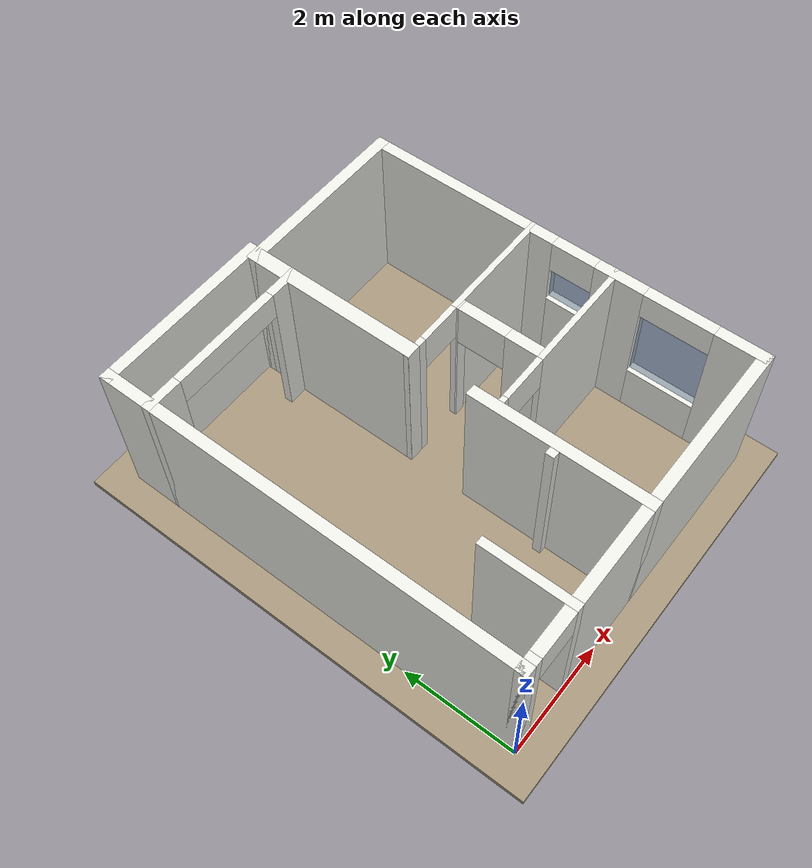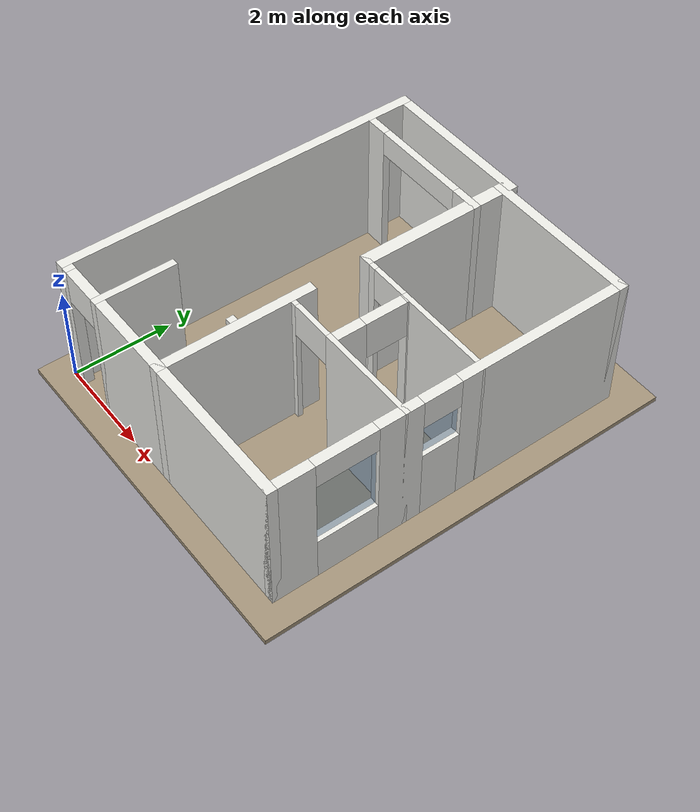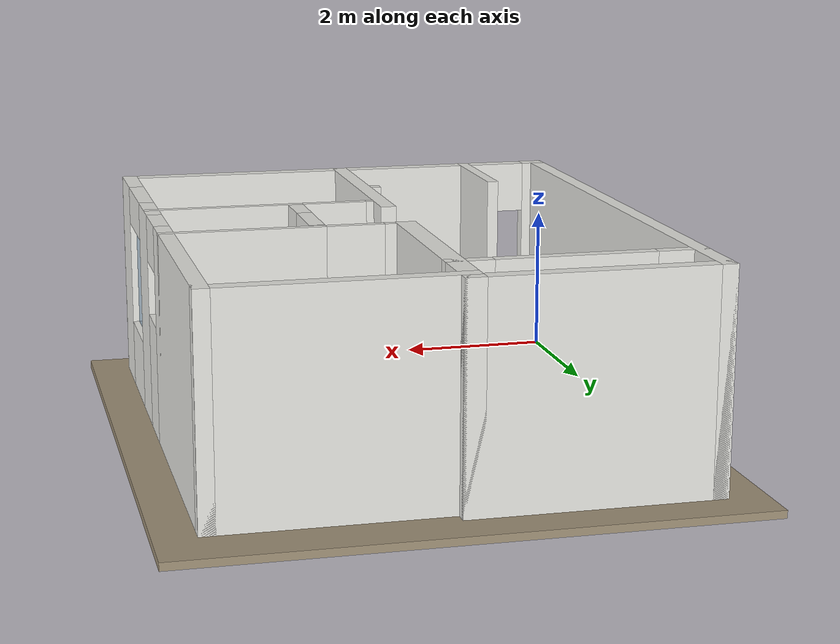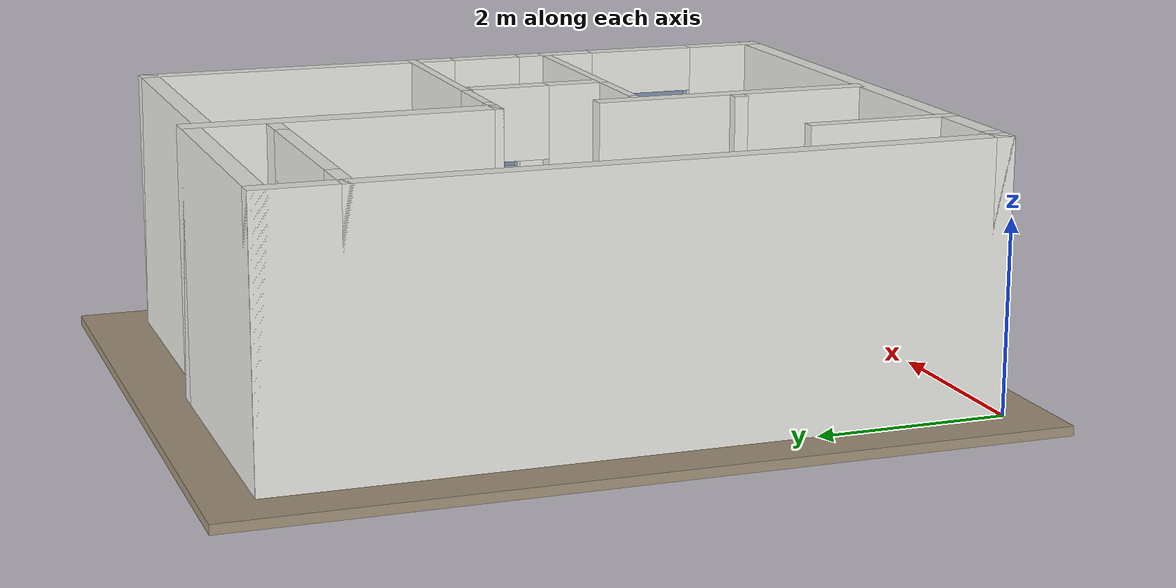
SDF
<?xml version="1.0" encoding="UTF-8"?>
<sdf version="1.6">
  <world name="apartment_house_merged_v1_3">
    <gravity>0 0 -9.81</gravity>
    <physics name="default_physics" type="ode">
      <!-- Accurate iterative solve for the four simultaneous wheel contacts. -->
      <ode>
        <solver>
          <type>quick</type>
          <iters>200</iters>
        </solver>
      </ode>
      <max_step_size>0.001</max_step_size>
      <real_time_update_rate>1000</real_time_update_rate>
      <real_time_factor>1.0</real_time_factor>
    </physics>
    <scene>
      <ambient>0.6 0.6 0.6 1</ambient>
      <background>0.85 0.85 0.85 1</background>
      <shadows>true</shadows>
    </scene>

    <!-- 内置太阳光 -->
    <light name="sun" type="directional">
      <pose>0 0 10 0 0 0</pose>
      <cast_shadows>true</cast_shadows>
      <diffuse>0.8 0.8 0.8 1</diffuse>
      <specular>0.2 0.2 0.2 1</specular>
      <direction>-0.3 0.2 -1</direction>
    </light>
    <gui fullscreen="0">
      <camera name="user_camera">
        <pose>3.1 -7.8 10.5 0 0.72 1.57</pose>
        <view_controller>orbit</view_controller>
        <projection_type>perspective</projection_type>
      </camera>
    </gui>
    <model name="apartment_house">
      <static>true</static>
      <link name="structure">
        <!-- 西侧外墙：向北延伸至阳台最北端。 -->
        <collision name="west_outer_0_collision">
          <pose>0.1000 3.7400 1.4000 0.0000 0.0000 0.0000</pose>
          <geometry>
            <box>
              <size>0.2000 7.4800 2.8000</size>
            </box>
          </geometry>
        </collision>
        <visual name="west_outer_0_visual">
          <pose>0.1000 3.7400 1.4000 0.0000 0.0000 0.0000</pose>
          <geometry>
            <box>
              <size>0.2000 7.4800 2.8000</size>
            </box>
          </geometry>
          <material>
            <ambient>0.92 0.92 0.90 1</ambient>
            <diffuse>0.92 0.92 0.90 1</diffuse>
          </material>
        </visual>
        <!-- 南侧入户门左侧短墙。 -->
        <collision name="south_outer_0_collision">
          <pose>0.1650 0.1000 1.4000 0.0000 0.0000 0.0000</pose>
          <geometry>
            <box>
              <size>0.3300 0.2000 2.8000</size>
            </box>
          </geometry>
        </collision>
        <visual name="south_outer_0_visual">
          <pose>0.1650 0.1000 1.4000 0.0000 0.0000 0.0000</pose>
          <geometry>
            <box>
              <size>0.3300 0.2000 2.8000</size>
            </box>
          </geometry>
          <material>
            <ambient>0.92 0.92 0.90 1</ambient>
            <diffuse>0.92 0.92 0.90 1</diffuse>
          </material>
        </visual>
        <!-- 入户门过梁：门洞宽0.87米、高2.10米，下方保持通行。 -->
        <collision name="south_outer_main_door_lintel_collision">
          <pose>0.7650 0.1000 2.4500 0.0000 0.0000 0.0000</pose>
          <geometry>
            <box>
              <size>0.8700 0.2000 0.7000</size>
            </box>
          </geometry>
        </collision>
        <visual name="south_outer_main_door_lintel_visual">
          <pose>0.7650 0.1000 2.4500 0.0000 0.0000 0.0000</pose>
          <geometry>
            <box>
              <size>0.8700 0.2000 0.7000</size>
            </box>
          </geometry>
          <material>
            <ambient>0.92 0.92 0.90 1</ambient>
            <diffuse>0.92 0.92 0.90 1</diffuse>
          </material>
        </visual>
        <!-- 南侧入户门右侧主墙。 -->
        <collision name="south_outer_2_collision">
          <pose>3.6950 0.1000 1.4000 0.0000 0.0000 0.0000</pose>
          <geometry>
            <box>
              <size>4.9900 0.2000 2.8000</size>
            </box>
          </geometry>
        </collision>
        <visual name="south_outer_2_visual">
          <pose>3.6950 0.1000 1.4000 0.0000 0.0000 0.0000</pose>
          <geometry>
            <box>
              <size>4.9900 0.2000 2.8000</size>
            </box>
          </geometry>
          <material>
            <ambient>0.92 0.92 0.90 1</ambient>
            <diffuse>0.92 0.92 0.90 1</diffuse>
          </material>
        </visual>
        <!-- 东侧外墙：小孩房窗下方的南端墙段（平面方向）。 -->
        <collision name="east_outer_0_collision">
          <pose>6.0900 0.4500 1.4000 0.0000 0.0000 0.0000</pose>
          <geometry>
            <box>
              <size>0.2000 0.9000 2.8000</size>
            </box>
          </geometry>
        </collision>
        <visual name="east_outer_0_visual">
          <pose>6.0900 0.4500 1.4000 0.0000 0.0000 0.0000</pose>
          <geometry>
            <box>
              <size>0.2000 0.9000 2.8000</size>
            </box>
          </geometry>
          <material>
            <ambient>0.92 0.92 0.90 1</ambient>
            <diffuse>0.92 0.92 0.90 1</diffuse>
          </material>
        </visual>
        <!-- 小孩房窗台墙：从地面到0.90米。 -->
        <collision name="east_outer_child_window_below_collision">
          <pose>6.0900 1.5100 0.4500 0.0000 0.0000 0.0000</pose>
          <geometry>
            <box>
              <size>0.2000 1.2200 0.9000</size>
            </box>
          </geometry>
        </collision>
        <visual name="east_outer_child_window_below_visual">
          <pose>6.0900 1.5100 0.4500 0.0000 0.0000 0.0000</pose>
          <geometry>
            <box>
              <size>0.2000 1.2200 0.9000</size>
            </box>
          </geometry>
          <material>
            <ambient>0.92 0.92 0.90 1</ambient>
            <diffuse>0.92 0.92 0.90 1</diffuse>
          </material>
        </visual>
        <!-- 小孩房窗顶墙：从2.30米到墙顶。 -->
        <collision name="east_outer_child_window_above_collision">
          <pose>6.0900 1.5100 2.5500 0.0000 0.0000 0.0000</pose>
          <geometry>
            <box>
              <size>0.2000 1.2200 0.5000</size>
            </box>
          </geometry>
        </collision>
        <visual name="east_outer_child_window_above_visual">
          <pose>6.0900 1.5100 2.5500 0.0000 0.0000 0.0000</pose>
          <geometry>
            <box>
              <size>0.2000 1.2200 0.5000</size>
            </box>
          </geometry>
          <material>
            <ambient>0.92 0.92 0.90 1</ambient>
            <diffuse>0.92 0.92 0.90 1</diffuse>
          </material>
        </visual>
        <!-- 关闭玻璃的碰撞与外观一致 -->
        <collision name="east_outer_child_window_glass_collision">
          <pose>6.0900 1.5100 1.6000 0.0000 0.0000 0.0000</pose>
          <geometry>
            <box>
              <size>0.0300 1.2200 1.4000</size>
            </box>
          </geometry>
        </collision>
        <visual name="east_outer_child_window_glass_visual">
          <pose>6.0900 1.5100 1.6000 0.0000 0.0000 0.0000</pose>
          <geometry>
            <box>
              <size>0.0300 1.2200 1.4000</size>
            </box>
          </geometry>
          <material>
            <ambient>0.25 0.45 0.65 1</ambient>
            <diffuse>0.25 0.45 0.65 1</diffuse>
          </material>
          <transparency>0.60</transparency>
          <cast_shadows>false</cast_shadows>
        </visual>
        <!-- 东侧外墙：连接两扇窗之间的墙段。 -->
        <collision name="east_outer_2_collision">
          <pose>6.0900 2.5600 1.4000 0.0000 0.0000 0.0000</pose>
          <geometry>
            <box>
              <size>0.2000 0.8800 2.8000</size>
            </box>
          </geometry>
        </collision>
        <visual name="east_outer_2_visual">
          <pose>6.0900 2.5600 1.4000 0.0000 0.0000 0.0000</pose>
          <geometry>
            <box>
              <size>0.2000 0.8800 2.8000</size>
            </box>
          </geometry>
          <material>
            <ambient>0.92 0.92 0.90 1</ambient>
            <diffuse>0.92 0.92 0.90 1</diffuse>
          </material>
        </visual>
        <!-- 卫生间高窗窗台墙：从地面到1.50米。 -->
        <collision name="east_outer_bath_window_below_collision">
          <pose>6.0900 3.3850 0.7500 0.0000 0.0000 0.0000</pose>
          <geometry>
            <box>
              <size>0.2000 0.7700 1.5000</size>
            </box>
          </geometry>
        </collision>
        <visual name="east_outer_bath_window_below_visual">
          <pose>6.0900 3.3850 0.7500 0.0000 0.0000 0.0000</pose>
          <geometry>
            <box>
              <size>0.2000 0.7700 1.5000</size>
            </box>
          </geometry>
          <material>
            <ambient>0.92 0.92 0.90 1</ambient>
            <diffuse>0.92 0.92 0.90 1</diffuse>
          </material>
        </visual>
        <!-- 卫生间窗顶墙：从2.20米到墙顶。 -->
        <collision name="east_outer_bath_window_above_collision">
          <pose>6.0900 3.3850 2.5000 0.0000 0.0000 0.0000</pose>
          <geometry>
            <box>
              <size>0.2000 0.7700 0.6000</size>
            </box>
          </geometry>
        </collision>
        <visual name="east_outer_bath_window_above_visual">
          <pose>6.0900 3.3850 2.5000 0.0000 0.0000 0.0000</pose>
          <geometry>
            <box>
              <size>0.2000 0.7700 0.6000</size>
            </box>
          </geometry>
          <material>
            <ambient>0.92 0.92 0.90 1</ambient>
            <diffuse>0.92 0.92 0.90 1</diffuse>
          </material>
        </visual>
        <!-- 关闭玻璃的碰撞与外观一致 -->
        <collision name="east_outer_bath_window_glass_collision">
          <pose>6.0900 3.3850 1.8500 0.0000 0.0000 0.0000</pose>
          <geometry>
            <box>
              <size>0.0300 0.7700 0.7000</size>
            </box>
          </geometry>
        </collision>
        <visual name="east_outer_bath_window_glass_visual">
          <pose>6.0900 3.3850 1.8500 0.0000 0.0000 0.0000</pose>
          <geometry>
            <box>
              <size>0.0300 0.7700 0.7000</size>
            </box>
          </geometry>
          <material>
            <ambient>0.25 0.45 0.65 1</ambient>
            <diffuse>0.25 0.45 0.65 1</diffuse>
          </material>
          <transparency>0.60</transparency>
          <cast_shadows>false</cast_shadows>
        </visual>
        <!-- 东侧外墙：卫生间窗以北至主卧北端。 -->
        <collision name="east_outer_4_collision">
          <pose>6.0900 5.5500 1.4000 0.0000 0.0000 0.0000</pose>
          <geometry>
            <box>
              <size>0.2000 3.5600 2.8000</size>
            </box>
          </geometry>
        </collision>
        <visual name="east_outer_4_visual">
          <pose>6.0900 5.5500 1.4000 0.0000 0.0000 0.0000</pose>
          <geometry>
            <box>
              <size>0.2000 3.5600 2.8000</size>
            </box>
          </geometry>
          <material>
            <ambient>0.92 0.92 0.90 1</ambient>
            <diffuse>0.92 0.92 0.90 1</diffuse>
          </material>
        </visual>
        <!-- 主卧北外墙：墙厚0.20米，北侧外缘Y=7.33。 -->
        <collision name="master_north_outer_0_collision">
          <pose>4.5700 7.2300 1.4000 0.0000 0.0000 0.0000</pose>
          <geometry>
            <box>
              <size>3.2400 0.2000 2.8000</size>
            </box>
          </geometry>
        </collision>
        <visual name="master_north_outer_0_visual">
          <pose>4.5700 7.2300 1.4000 0.0000 0.0000 0.0000</pose>
          <geometry>
            <box>
              <size>3.2400 0.2000 2.8000</size>
            </box>
          </geometry>
          <material>
            <ambient>0.92 0.92 0.90 1</ambient>
            <diffuse>0.92 0.92 0.90 1</diffuse>
          </material>
        </visual>
        <!-- 阳台北外墙：北侧外缘Y=7.48，突出量为暂定值。 -->
        <collision name="balcony_north_outer_0_collision">
          <pose>1.6050 7.3800 1.4000 0.0000 0.0000 0.0000</pose>
          <geometry>
            <box>
              <size>3.2100 0.2000 2.8000</size>
            </box>
          </geometry>
        </collision>
        <visual name="balcony_north_outer_0_visual">
          <pose>1.6050 7.3800 1.4000 0.0000 0.0000 0.0000</pose>
          <geometry>
            <box>
              <size>3.2100 0.2000 2.8000</size>
            </box>
          </geometry>
          <material>
            <ambient>0.92 0.92 0.90 1</ambient>
            <diffuse>0.92 0.92 0.90 1</diffuse>
          </material>
        </visual>
        <!-- 阳台与客厅之间的左侧短墙。 -->
        <collision name="balcony_separator_0_collision">
          <pose>0.3200 6.5600 1.4000 0.0000 0.0000 0.0000</pose>
          <geometry>
            <box>
              <size>0.6400 0.1500 2.8000</size>
            </box>
          </geometry>
        </collision>
        <visual name="balcony_separator_0_visual">
          <pose>0.3200 6.5600 1.4000 0.0000 0.0000 0.0000</pose>
          <geometry>
            <box>
              <size>0.6400 0.1500 2.8000</size>
            </box>
          </geometry>
          <material>
            <ambient>0.92 0.92 0.90 1</ambient>
            <diffuse>0.92 0.92 0.90 1</diffuse>
          </material>
        </visual>
        <!-- 阳台开口过梁：净宽1.98米、净高2.30米。 -->
        <collision name="balcony_separator_balcony_opening_lintel_collision">
          <pose>1.6300 6.5600 2.5500 0.0000 0.0000 0.0000</pose>
          <geometry>
            <box>
              <size>1.9800 0.1500 0.5000</size>
            </box>
          </geometry>
        </collision>
        <visual name="balcony_separator_balcony_opening_lintel_visual">
          <pose>1.6300 6.5600 2.5500 0.0000 0.0000 0.0000</pose>
          <geometry>
            <box>
              <size>1.9800 0.1500 0.5000</size>
            </box>
          </geometry>
          <material>
            <ambient>0.92 0.92 0.90 1</ambient>
            <diffuse>0.92 0.92 0.90 1</diffuse>
          </material>
        </visual>
        <!-- 阳台与客厅之间的右侧短墙。 -->
        <collision name="balcony_separator_2_collision">
          <pose>2.9150 6.5600 1.4000 0.0000 0.0000 0.0000</pose>
          <geometry>
            <box>
              <size>0.5900 0.1500 2.8000</size>
            </box>
          </geometry>
        </collision>
        <visual name="balcony_separator_2_visual">
          <pose>2.9150 6.5600 1.4000 0.0000 0.0000 0.0000</pose>
          <geometry>
            <box>
              <size>0.5900 0.1500 2.8000</size>
            </box>
          </geometry>
          <material>
            <ambient>0.92 0.92 0.90 1</ambient>
            <diffuse>0.92 0.92 0.90 1</diffuse>
          </material>
        </visual>
        <!-- 上部中央隔墙：分隔客厅与主卧，墙厚0.26米。 -->
        <collision name="upper_central_partition_0_collision">
          <pose>3.0800 5.8300 1.4000 0.0000 0.0000 0.0000</pose>
          <geometry>
            <box>
              <size>0.2600 3.3000 2.8000</size>
            </box>
          </geometry>
        </collision>
        <visual name="upper_central_partition_0_visual">
          <pose>3.0800 5.8300 1.4000 0.0000 0.0000 0.0000</pose>
          <geometry>
            <box>
              <size>0.2600 3.3000 2.8000</size>
            </box>
          </geometry>
          <material>
            <ambient>0.92 0.92 0.90 1</ambient>
            <diffuse>0.92 0.92 0.90 1</diffuse>
          </material>
        </visual>
        <!-- 主卧南墙的起始墙段，与中央隔墙相接。 -->
        <collision name="master_south_partition_0_collision">
          <pose>3.0800 4.2300 1.4000 0.0000 0.0000 0.0000</pose>
          <geometry>
            <box>
              <size>0.2600 0.1000 2.8000</size>
            </box>
          </geometry>
        </collision>
        <visual name="master_south_partition_0_visual">
          <pose>3.0800 4.2300 1.4000 0.0000 0.0000 0.0000</pose>
          <geometry>
            <box>
              <size>0.2600 0.1000 2.8000</size>
            </box>
          </geometry>
          <material>
            <ambient>0.92 0.92 0.90 1</ambient>
            <diffuse>0.92 0.92 0.90 1</diffuse>
          </material>
        </visual>
        <!-- 主卧门过梁：净宽0.74米、净高2.10米。 -->
        <collision name="master_south_partition_master_door_lintel_collision">
          <pose>3.7300 4.2300 2.4500 0.0000 0.0000 0.0000</pose>
          <geometry>
            <box>
              <size>0.7400 0.1000 0.7000</size>
            </box>
          </geometry>
        </collision>
        <visual name="master_south_partition_master_door_lintel_visual">
          <pose>3.7300 4.2300 2.4500 0.0000 0.0000 0.0000</pose>
          <geometry>
            <box>
              <size>0.7400 0.1000 0.7000</size>
            </box>
          </geometry>
          <material>
            <ambient>0.92 0.92 0.90 1</ambient>
            <diffuse>0.92 0.92 0.90 1</diffuse>
          </material>
        </visual>
        <!-- 主卧南侧隔墙：厚0.10米。 -->
        <collision name="master_south_partition_2_collision">
          <pose>5.1450 4.2300 1.4000 0.0000 0.0000 0.0000</pose>
          <geometry>
            <box>
              <size>2.0900 0.1000 2.8000</size>
            </box>
          </geometry>
        </collision>
        <visual name="master_south_partition_2_visual">
          <pose>5.1450 4.2300 1.4000 0.0000 0.0000 0.0000</pose>
          <geometry>
            <box>
              <size>2.0900 0.1000 2.8000</size>
            </box>
          </geometry>
          <material>
            <ambient>0.92 0.92 0.90 1</ambient>
            <diffuse>0.92 0.92 0.90 1</diffuse>
          </material>
        </visual>
        <!-- 下部中央隔墙：厚0.20米，与上墙之间留客餐厅通向过道的开口。 -->
        <collision name="lower_central_partition_0_collision">
          <pose>3.0500 1.5750 1.4000 0.0000 0.0000 0.0000</pose>
          <geometry>
            <box>
              <size>0.2000 3.1500 2.8000</size>
            </box>
          </geometry>
        </collision>
        <visual name="lower_central_partition_0_visual">
          <pose>3.0500 1.5750 1.4000 0.0000 0.0000 0.0000</pose>
          <geometry>
            <box>
              <size>0.2000 3.1500 2.8000</size>
            </box>
          </geometry>
          <material>
            <ambient>0.92 0.92 0.90 1</ambient>
            <diffuse>0.92 0.92 0.90 1</diffuse>
          </material>
        </visual>
        <!-- 卫生间西侧隔墙的南段。 -->
        <collision name="bath_left_partition_0_collision">
          <pose>4.2000 3.0100 1.4000 0.0000 0.0000 0.0000</pose>
          <geometry>
            <box>
              <size>0.2000 0.5800 2.8000</size>
            </box>
          </geometry>
        </collision>
        <visual name="bath_left_partition_0_visual">
          <pose>4.2000 3.0100 1.4000 0.0000 0.0000 0.0000</pose>
          <geometry>
            <box>
              <size>0.2000 0.5800 2.8000</size>
            </box>
          </geometry>
          <material>
            <ambient>0.92 0.92 0.90 1</ambient>
            <diffuse>0.92 0.92 0.90 1</diffuse>
          </material>
        </visual>
        <!-- 卫生间门过梁：门洞沿Y方向，净宽0.85米、净高2.00米。 -->
        <collision name="bath_left_partition_bath_door_lintel_collision">
          <pose>4.2000 3.7250 2.4000 0.0000 0.0000 0.0000</pose>
          <geometry>
            <box>
              <size>0.2000 0.8500 0.8000</size>
            </box>
          </geometry>
        </collision>
        <visual name="bath_left_partition_bath_door_lintel_visual">
          <pose>4.2000 3.7250 2.4000 0.0000 0.0000 0.0000</pose>
          <geometry>
            <box>
              <size>0.2000 0.8500 0.8000</size>
            </box>
          </geometry>
          <material>
            <ambient>0.92 0.92 0.90 1</ambient>
            <diffuse>0.92 0.92 0.90 1</diffuse>
          </material>
        </visual>
        <!-- 小孩房北侧入口过梁：净宽0.85米、净高2.10米。 -->
        <collision name="bath_child_partition_child_door_lintel_collision">
          <pose>3.6750 2.6700 2.4500 0.0000 0.0000 0.0000</pose>
          <geometry>
            <box>
              <size>0.8500 0.1000 0.7000</size>
            </box>
          </geometry>
        </collision>
        <visual name="bath_child_partition_child_door_lintel_visual">
          <pose>3.6750 2.6700 2.4500 0.0000 0.0000 0.0000</pose>
          <geometry>
            <box>
              <size>0.8500 0.1000 0.7000</size>
            </box>
          </geometry>
          <material>
            <ambient>0.92 0.92 0.90 1</ambient>
            <diffuse>0.92 0.92 0.90 1</diffuse>
          </material>
        </visual>
        <!-- 卫生间与小孩房之间的横向隔墙：厚0.10米。 -->
        <collision name="bath_child_partition_1_collision">
          <pose>5.1450 2.6700 1.4000 0.0000 0.0000 0.0000</pose>
          <geometry>
            <box>
              <size>2.0900 0.1000 2.8000</size>
            </box>
          </geometry>
        </collision>
        <visual name="bath_child_partition_1_visual">
          <pose>5.1450 2.6700 1.4000 0.0000 0.0000 0.0000</pose>
          <geometry>
            <box>
              <size>2.0900 0.1000 2.8000</size>
            </box>
          </geometry>
          <material>
            <ambient>0.92 0.92 0.90 1</ambient>
            <diffuse>0.92 0.92 0.90 1</diffuse>
          </material>
        </visual>
        <!-- 厨房左隔墙：厚0.15米，向餐厅一侧开放。 -->
        <collision name="kitchen_left_partition_0_collision">
          <pose>1.1950 0.8100 1.4000 0.0000 0.0000 0.0000</pose>
          <geometry>
            <box>
              <size>0.1500 1.6200 2.8000</size>
            </box>
          </geometry>
        </collision>
        <visual name="kitchen_left_partition_0_visual">
          <pose>1.1950 0.8100 1.4000 0.0000 0.0000 0.0000</pose>
          <geometry>
            <box>
              <size>0.1500 1.6200 2.8000</size>
            </box>
          </geometry>
          <material>
            <ambient>0.92 0.92 0.90 1</ambient>
            <diffuse>0.92 0.92 0.90 1</diffuse>
          </material>
        </visual>
        <!-- 补回主卧入口左侧短墙：由图面识别，长度为推估值；视觉与碰撞一致。 -->
        <collision name="master_left_jamb_collision">
          <pose>3.285 4.23 1.4 0 0 0</pose>
          <geometry>
            <box>
              <size>0.15 0.10 2.8</size>
            </box>
          </geometry>
        </collision>
        <visual name="master_left_jamb_visual">
          <pose>3.285 4.23 1.4 0 0 0</pose>
          <geometry>
            <box>
              <size>0.15 0.10 2.8</size>
            </box>
          </geometry>
          <material>
            <ambient>0.92 0.92 0.90 1</ambient>
            <diffuse>0.92 0.92 0.90 1</diffuse>
          </material>
        </visual>
        <!-- 补回卫生间门上端短墙：由图面识别，长度为推估值；视觉与碰撞一致。 -->
        <collision name="bath_upper_jamb_collision">
          <pose>4.20 4.165 1.4 0 0 0</pose>
          <geometry>
            <box>
              <size>0.20 0.030 2.8</size>
            </box>
          </geometry>
        </collision>
        <visual name="bath_upper_jamb_visual">
          <pose>4.20 4.165 1.4 0 0 0</pose>
          <geometry>
            <box>
              <size>0.20 0.030 2.8</size>
            </box>
          </geometry>
          <material>
            <ambient>0.92 0.92 0.90 1</ambient>
            <diffuse>0.92 0.92 0.90 1</diffuse>
          </material>
        </visual>
        <!-- 补回小孩房入口左侧短墙：由图面识别，长度为推估值；视觉与碰撞一致。 -->
        <collision name="child_left_jamb_collision">
          <pose>3.20 2.67 1.4 0 0 0</pose>
          <geometry>
            <box>
              <size>0.10 0.10 2.8</size>
            </box>
          </geometry>
        </collision>
        <visual name="child_left_jamb_visual">
          <pose>3.20 2.67 1.4 0 0 0</pose>
          <geometry>
            <box>
              <size>0.10 0.10 2.8</size>
            </box>
          </geometry>
          <material>
            <ambient>0.92 0.92 0.90 1</ambient>
            <diffuse>0.92 0.92 0.90 1</diffuse>
          </material>
        </visual>
        <!-- 补回厨房入口右侧横向短墙：由图面识别，长度为推估值；视觉与碰撞一致。 -->
        <collision name="kitchen_right_return_collision">
          <pose>2.885 1.62 1.4 0 0 0</pose>
          <geometry>
            <box>
              <size>0.13 0.15 2.8</size>
            </box>
          </geometry>
        </collision>
        <visual name="kitchen_right_return_visual">
          <pose>2.885 1.62 1.4 0 0 0</pose>
          <geometry>
            <box>
              <size>0.13 0.15 2.8</size>
            </box>
          </geometry>
          <material>
            <ambient>0.92 0.92 0.90 1</ambient>
            <diffuse>0.92 0.92 0.90 1</diffuse>
          </material>
        </visual>
      </link>
    </model>
    <!--
      物理地面保留房屋外扩展范围；可见地面与Nav2地图边界对齐。
      Nav2范围：X=-0.50..6.70，Y=-0.50..8.00，中心=(3.10,3.75)。
      可见地面顶面略低于Z=0，使Gazebo参考Grid不被遮挡。
    -->
    <model name="ground">
      <static>true</static>
      <pose>3.095 3.74 -0.05 0 0 0</pose>
      <link name="floor">
        <collision name="floor_collision">
          <geometry>
            <box>
              <size>12.19 13.48 0.10</size>
            </box>
          </geometry>
          <surface>
            <friction>
              <ode>
                <mu>1.0</mu>
                <mu2>1.0</mu2>
              </ode>
            </friction>
          </surface>
        </collision>
        <visual name="floor_visual">
          <pose>0.005 0.010 -0.001 0 0 0</pose>
          <geometry>
            <box>
              <size>7.20 8.50 0.10</size>
            </box>
          </geometry>
          <material>
            <ambient>0.64 0.58 0.48 1</ambient>
            <diffuse>0.64 0.58 0.48 1</diffuse>
          </material>
        </visual>
      </link>
    </model>
  </world>
</sdf>
